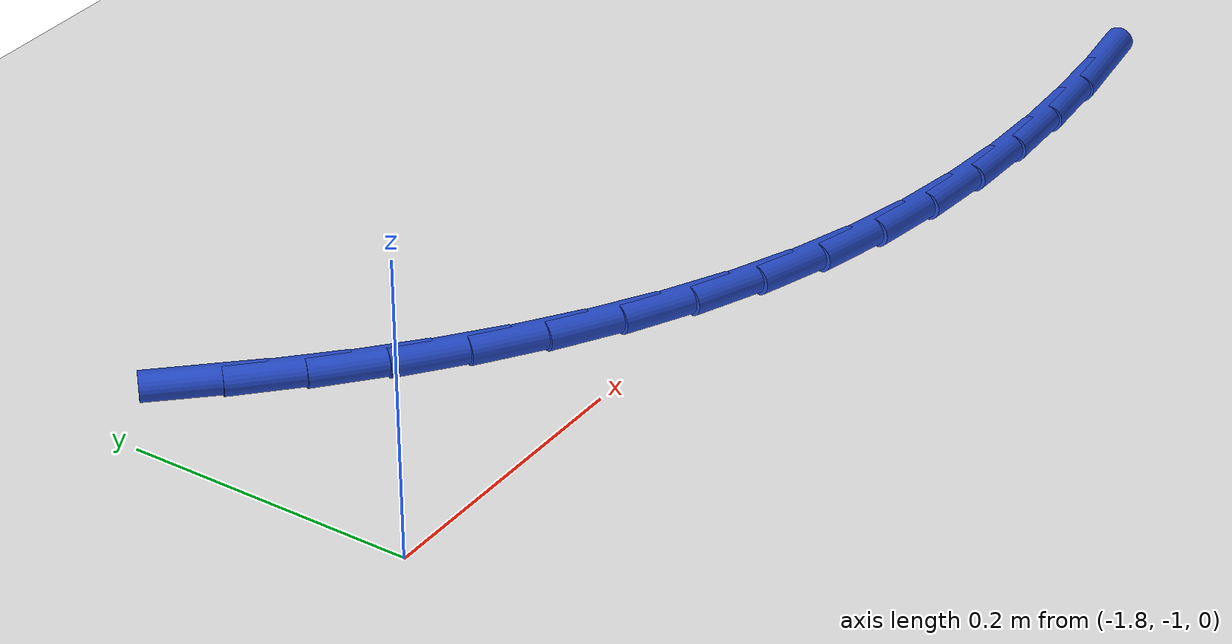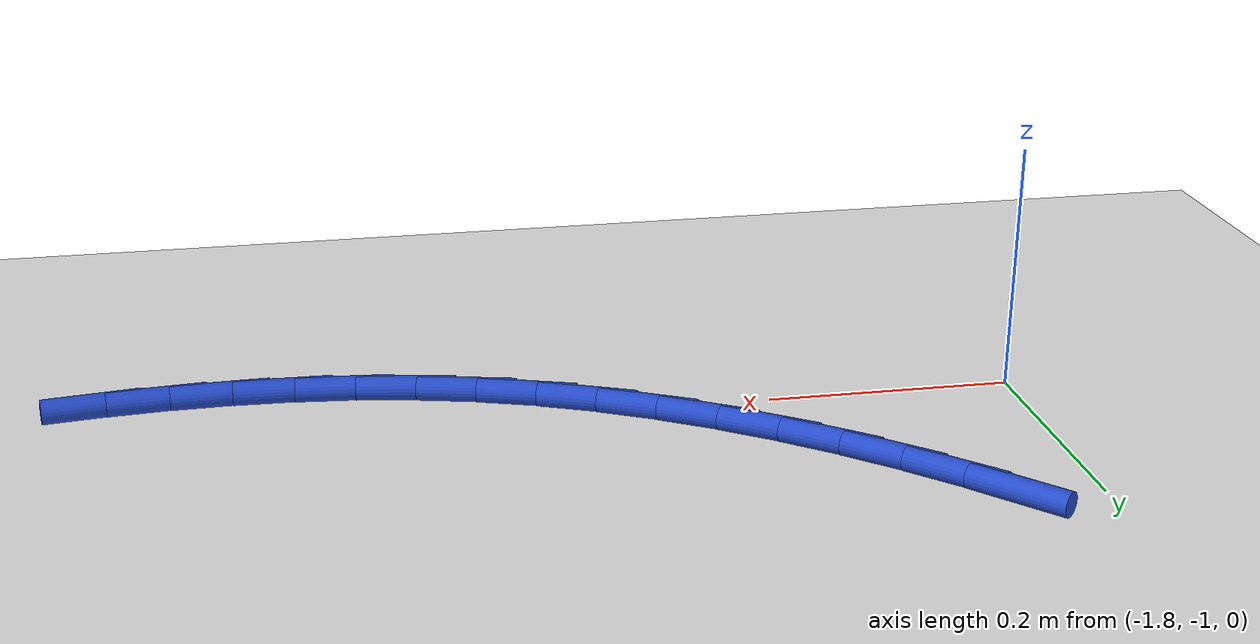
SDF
<sdf version="1.6">
 <world name="default">
  <model name="ground_plane">
   <static>1</static>
   <link name="link">
    <collision name="collision">
     <geometry><plane><normal>0 0 1</normal><size>100 100</size></plane></geometry>
     <surface><friction><ode><mu>100</mu><mu2>50</mu2></ode></friction></surface>
    </collision>
    <visual name="visual">
     <cast_shadows>0</cast_shadows>
     <geometry><plane><normal>0 0 1</normal><size>100 100</size></plane></geometry>
     <material>
      <script><uri>file://media/materials/scripts/gazebo.material</uri><name>Gazebo/WhiteGlow</name></script>
     </material>
    </visual>
   </link>
  </model>
  <model name="line">
   <link name="link_82">
    <pose>-1.7302711258368657 -0.7947482248581693 0.01 0 1.57 -0.8170145834346672</pose>
    <collision name="collision">
     <geometry><cylinder><radius>0.01</radius><length>0.08</length></cylinder></geometry>
    </collision>
    <visual name="visual">
     <material>
      <script><name>Gazebo/Blue</name><uri>file://media/materials/scripts/gazebo.material</uri></script>
     </material>
     <geometry><cylinder><radius>0.01</radius><length>0.08</length></cylinder></geometry>
    </visual>
   </link>
   <link name="link_83">
    <pose>-1.6953443363750564 -0.8319564246548316 0.01 0 1.57 -0.7675079534839137</pose>
    <collision name="collision">
     <geometry><cylinder><radius>0.01</radius><length>0.08</length></cylinder></geometry>
    </collision>
    <visual name="visual">
     <material>
      <script><name>Gazebo/Blue</name><uri>file://media/materials/scripts/gazebo.material</uri></script>
     </material>
     <geometry><cylinder><radius>0.01</radius><length>0.08</length></cylinder></geometry>
    </visual>
   </link>
   <link name="link_84">
    <pose>-1.658626040603946 -0.8673838800745433 0.01 0 1.57 -0.7151655990888257</pose>
    <collision name="collision">
     <geometry><cylinder><radius>0.01</radius><length>0.08</length></cylinder></geometry>
    </collision>
    <visual name="visual">
     <material>
      <script><name>Gazebo/Blue</name><uri>file://media/materials/scripts/gazebo.material</uri></script>
     </material>
     <geometry><cylinder><radius>0.01</radius><length>0.08</length></cylinder></geometry>
    </visual>
   </link>
   <link name="link_85">
    <pose>-1.6202084802003962 -0.9007514787742005 0.01 0 1.57 -0.6594595496552373</pose>
    <collision name="collision">
     <geometry><cylinder><radius>0.01</radius><length>0.08</length></cylinder></geometry>
    </collision>
    <visual name="visual">
     <material>
      <script><name>Gazebo/Blue</name><uri>file://media/materials/scripts/gazebo.material</uri></script>
     </material>
     <geometry><cylinder><radius>0.01</radius><length>0.08</length></cylinder></geometry>
    </visual>
   </link>
   <link name="link_86">
    <pose>-1.5801838968412705 -0.9317801084106995 0.01 0 1.57 -0.5998678151271492</pose>
    <collision name="collision">
     <geometry><cylinder><radius>0.01</radius><length>0.08</length></cylinder></geometry>
    </collision>
    <visual name="visual">
     <material>
      <script><name>Gazebo/Blue</name><uri>file://media/materials/scripts/gazebo.material</uri></script>
     </material>
     <geometry><cylinder><radius>0.01</radius><length>0.08</length></cylinder></geometry>
    </visual>
   </link>
   <link name="link_87">
    <pose>-1.538644532203434 -0.9601906566409362 0.01 0 1.57 -0.5358925286381074</pose>
    <collision name="collision">
     <geometry><cylinder><radius>0.01</radius><length>0.08</length></cylinder></geometry>
    </collision>
    <visual name="visual">
     <material>
      <script><name>Gazebo/Blue</name><uri>file://media/materials/scripts/gazebo.material</uri></script>
     </material>
     <geometry><cylinder><radius>0.01</radius><length>0.08</length></cylinder></geometry>
    </visual>
   </link>
   <link name="link_88">
    <pose>-1.4956826279637485 -0.9857040111218064 0.01 0 1.57 -0.4670905237284956</pose>
    <collision name="collision">
     <geometry><cylinder><radius>0.01</radius><length>0.08</length></cylinder></geometry>
    </collision>
    <visual name="visual">
     <material>
      <script><name>Gazebo/Blue</name><uri>file://media/materials/scripts/gazebo.material</uri></script>
     </material>
     <geometry><cylinder><radius>0.01</radius><length>0.08</length></cylinder></geometry>
    </visual>
   </link>
   <link name="link_89">
    <pose>-1.4513904257990784 -1.0080410595102063 0.01 0 1.57 -0.3931185546003246</pose>
    <collision name="collision">
     <geometry><cylinder><radius>0.01</radius><length>0.08</length></cylinder></geometry>
    </collision>
    <visual name="visual">
     <material>
      <script><name>Gazebo/Blue</name><uri>file://media/materials/scripts/gazebo.material</uri></script>
     </material>
     <geometry><cylinder><radius>0.01</radius><length>0.08</length></cylinder></geometry>
    </visual>
   </link>
   <link name="link_90">
    <pose>-1.405860167386286 -1.026922689463032 0.01 0 1.57 -0.3138050636771011</pose>
    <collision name="collision">
     <geometry><cylinder><radius>0.01</radius><length>0.08</length></cylinder></geometry>
    </collision>
    <visual name="visual">
     <material>
      <script><name>Gazebo/Blue</name><uri>file://media/materials/scripts/gazebo.material</uri></script>
     </material>
     <geometry><cylinder><radius>0.01</radius><length>0.08</length></cylinder></geometry>
    </visual>
   </link>
   <link name="link_91">
    <pose>-1.3591841841025931 -1.0420703597589052 0.01 0 1.57 -0.23225110822078854</pose>
    <collision name="collision">
     <geometry><cylinder><radius>0.01</radius><length>0.08</length></cylinder></geometry>
    </collision>
    <visual name="visual">
     <material>
      <script><name>Gazebo/Blue</name><uri>file://media/materials/scripts/gazebo.material</uri></script>
     </material>
     <geometry><cylinder><radius>0.01</radius><length>0.08</length></cylinder></geometry>
    </visual>
   </link>
   <link name="link_92">
    <pose>-1.3114780891276787 -1.0533537642949873 0.01 0 1.57 -0.15591152779207834</pose>
    <collision name="collision">
     <geometry><cylinder><radius>0.01</radius><length>0.08</length></cylinder></geometry>
    </collision>
    <visual name="visual">
     <material>
      <script><name>Gazebo/Blue</name><uri>file://media/materials/scripts/gazebo.material</uri></script>
     </material>
     <geometry><cylinder><radius>0.01</radius><length>0.08</length></cylinder></geometry>
    </visual>
   </link>
   <link name="link_93">
    <pose>-1.2629117100823442 -1.0609877800410044 0.01 0 1.57 -0.08605313114354128</pose>
    <collision name="collision">
     <geometry><cylinder><radius>0.01</radius><length>0.08</length></cylinder></geometry>
    </collision>
    <visual name="visual">
     <material>
      <script><name>Gazebo/Blue</name><uri>file://media/materials/scripts/gazebo.material</uri></script>
     </material>
     <geometry><cylinder><radius>0.01</radius><length>0.08</length></cylinder></geometry>
    </visual>
   </link>
   <link name="link_94">
    <pose>-1.213662575317112 -1.0652363144738748 0.01 0 1.57 -0.02264661590623924</pose>
    <collision name="collision">
     <geometry><cylinder><radius>0.01</radius><length>0.08</length></cylinder></geometry>
    </collision>
    <visual name="visual">
     <material>
      <script><name>Gazebo/Blue</name><uri>file://media/materials/scripts/gazebo.material</uri></script>
     </material>
     <geometry><cylinder><radius>0.01</radius><length>0.08</length></cylinder></geometry>
    </visual>
   </link>
   <link name="link_95">
    <pose>-1.1639082131825051 -1.0663632750705159 0.01 0 1.57 0.03454365239388916</pose>
    <collision name="collision">
     <geometry><cylinder><radius>0.01</radius><length>0.08</length></cylinder></geometry>
    </collision>
    <visual name="visual">
     <material>
      <script><name>Gazebo/Blue</name><uri>file://media/materials/scripts/gazebo.material</uri></script>
     </material>
     <geometry><cylinder><radius>0.01</radius><length>0.08</length></cylinder></geometry>
    </visual>
   </link>
   <link name="link_96">
    <pose>-1.1138261520290442 -1.0646325693078444 0.01 0 1.57 0.08587769869200731</pose>
    <collision name="collision">
     <geometry><cylinder><radius>0.01</radius><length>0.08</length></cylinder></geometry>
    </collision>
    <visual name="visual">
     <material>
      <script><name>Gazebo/Blue</name><uri>file://media/materials/scripts/gazebo.material</uri></script>
     </material>
     <geometry><cylinder><radius>0.01</radius><length>0.08</length></cylinder></geometry>
    </visual>
   </link>
   <link name="link_97">
    <pose>-1.0635939202072526 -1.0603081046627791 0.01 0 1.57 0.1317751471517831</pose>
    <collision name="collision">
     <geometry><cylinder><radius>0.01</radius><length>0.08</length></cylinder></geometry>
    </collision>
    <visual name="visual">
     <material>
      <script><name>Gazebo/Blue</name><uri>file://media/materials/scripts/gazebo.material</uri></script>
     </material>
     <geometry><cylinder><radius>0.01</radius><length>0.08</length></cylinder></geometry>
    </visual>
   </link>
  </model>
 </world>
</sdf>
